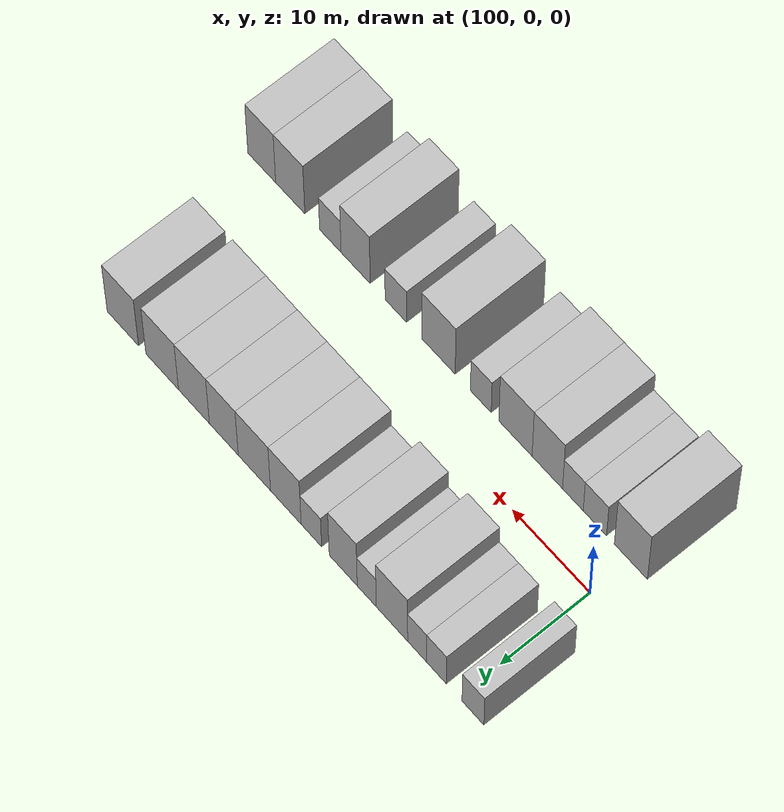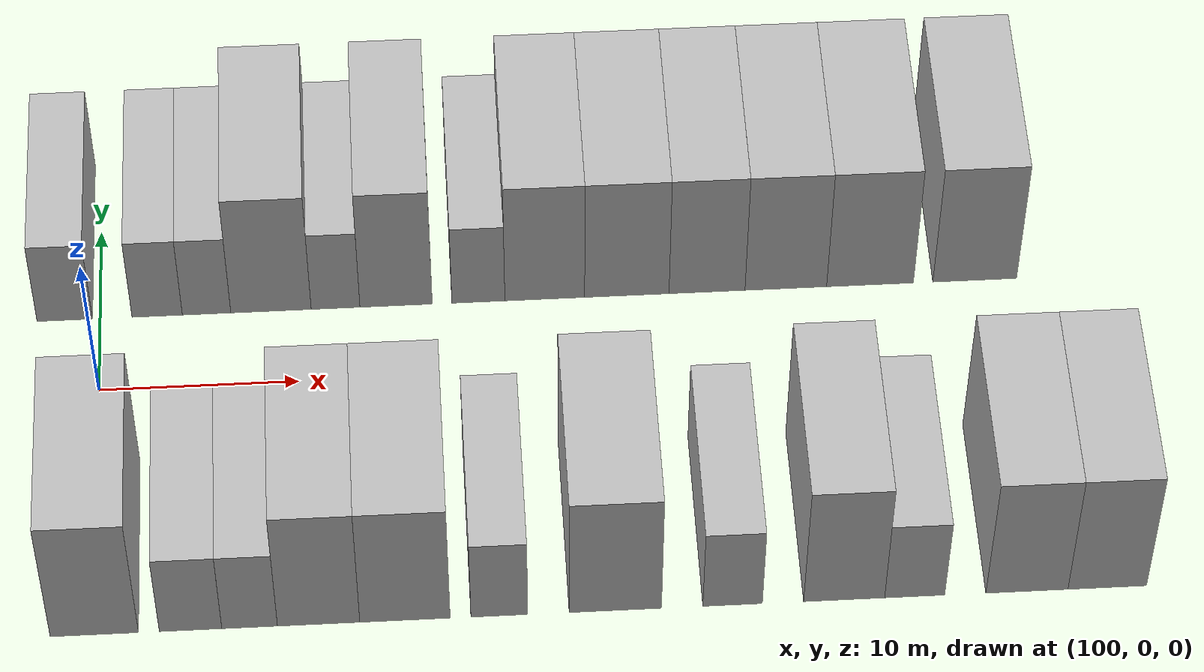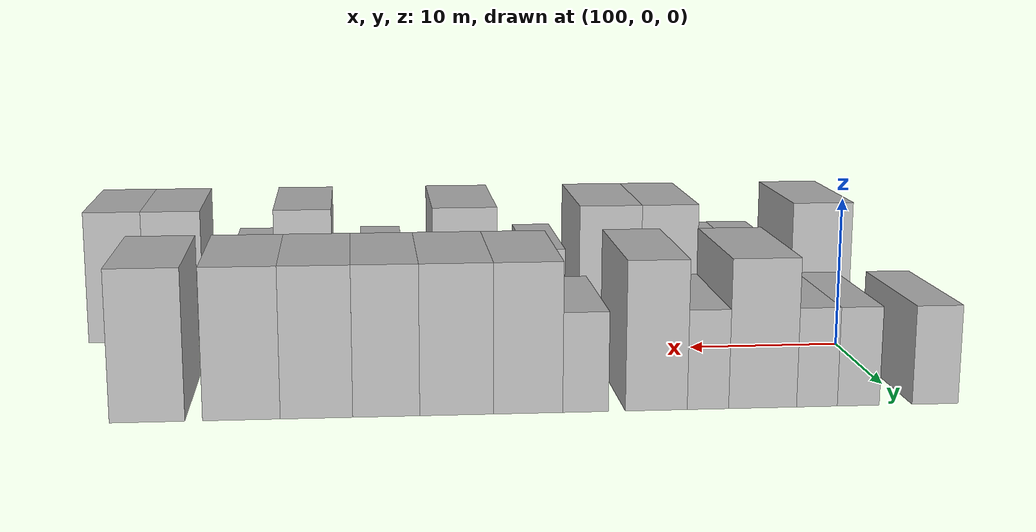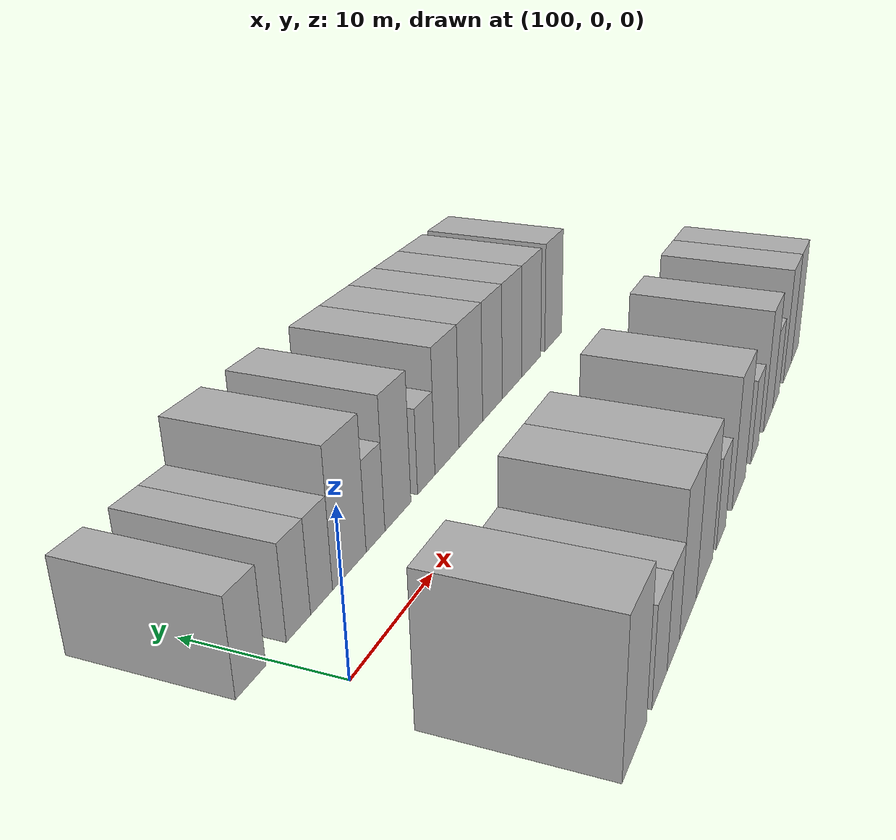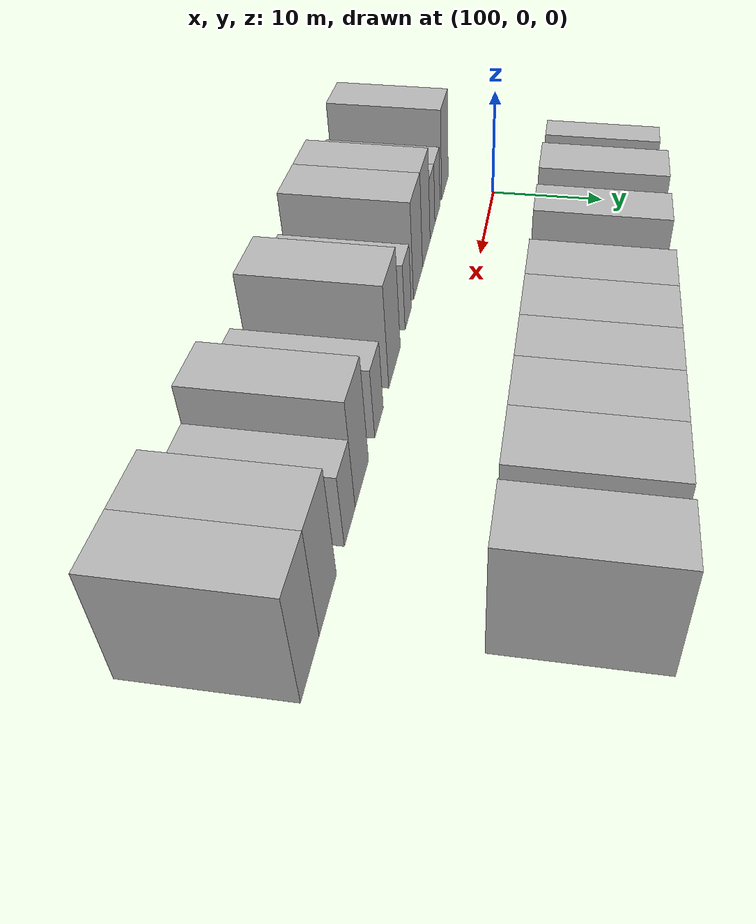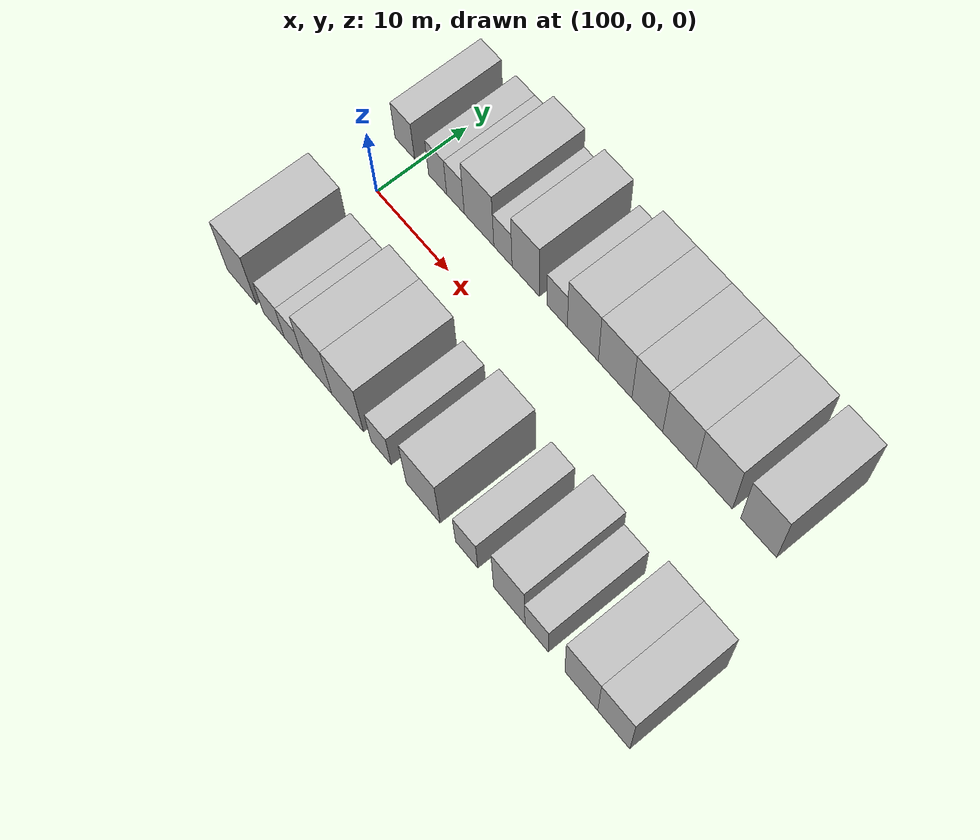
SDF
<sdf version="1.6">
 <world name="default">
  <model name="building_27">
   <static>1</static>
   <pose>98.1973 9.5000 0 0.000000 0.000000 1.570796</pose>
   <link name="link">
    <pose>0 0 3.00 0 0 0</pose>
    <collision name="collision"><geometry><box><size>10.0000 2.8018 6.0000</size></box></geometry></collision>
    <visual name="visual">
     <cast_shadows>0</cast_shadows>
     <geometry><box><size>10.0000 2.8018 6.0000</size></box></geometry>
     <material>
      <script>
       <uri>model://HANNAS_wall/materials/scripts</uri>
       <uri>model://HANNAS_wall/materials/textures</uri>
       <name>vrc/HANNAS_wall</name>
      </script>
     </material>
    </visual>
   </link>
  </model>
  <model name="building_28">
   <static>1</static>
   <pose>102.8704 9.5000 0 0.000000 0.000000 1.570796</pose>
   <link name="link">
    <pose>0 0 3.00 0 0 0</pose>
    <collision name="collision"><geometry><box><size>10.0000 2.5444 6.0000</size></box></geometry></collision>
    <visual name="visual">
     <cast_shadows>0</cast_shadows>
     <geometry><box><size>10.0000 2.5444 6.0000</size></box></geometry>
     <material>
      <script>
       <uri>model://HANNAS_wall/materials/scripts</uri>
       <uri>model://HANNAS_wall/materials/textures</uri>
       <name>vrc/HANNAS_wall</name>
      </script>
     </material>
    </visual>
   </link>
  </model>
  <model name="building_29">
   <static>1</static>
   <pose>105.3712 9.5000 0 0.000000 0.000000 1.570796</pose>
   <link name="link">
    <pose>0 0 3.00 0 0 0</pose>
    <collision name="collision"><geometry><box><size>10.0000 2.4571 6.0000</size></box></geometry></collision>
    <visual name="visual">
     <cast_shadows>0</cast_shadows>
     <geometry><box><size>10.0000 2.4571 6.0000</size></box></geometry>
     <material>
      <script>
       <uri>model://HANNAS_wall/materials/scripts</uri>
       <uri>model://HANNAS_wall/materials/textures</uri>
       <name>vrc/HANNAS_wall</name>
      </script>
     </material>
    </visual>
   </link>
  </model>
  <model name="building_30">
   <static>1</static>
   <pose>108.6389 9.5000 0 0.000000 0.000000 1.570796</pose>
   <link name="link">
    <pose>0 0 4.50 0 0 0</pose>
    <collision name="collision"><geometry><box><size>10.0000 4.0783 9.0000</size></box></geometry></collision>
    <visual name="visual">
     <cast_shadows>0</cast_shadows>
     <geometry><box><size>10.0000 4.0783 9.0000</size></box></geometry>
     <material>
      <script>
       <uri>model://HANNAS_wall/materials/scripts</uri>
       <uri>model://HANNAS_wall/materials/textures</uri>
       <name>vrc/HANNAS_wall</name>
      </script>
     </material>
    </visual>
   </link>
  </model>
  <model name="building_31">
   <static>1</static>
   <pose>111.9144 9.5000 0 0.000000 0.000000 1.570796</pose>
   <link name="link">
    <pose>0 0 3.00 0 0 0</pose>
    <collision name="collision"><geometry><box><size>10.0000 2.4729 6.0000</size></box></geometry></collision>
    <visual name="visual">
     <cast_shadows>0</cast_shadows>
     <geometry><box><size>10.0000 2.4729 6.0000</size></box></geometry>
     <material>
      <script>
       <uri>model://HANNAS_wall/materials/scripts</uri>
       <uri>model://HANNAS_wall/materials/textures</uri>
       <name>vrc/HANNAS_wall</name>
      </script>
     </material>
    </visual>
   </link>
  </model>
  <model name="building_32">
   <static>1</static>
   <pose>114.9888 9.5000 0 0.000000 0.000000 1.570796</pose>
   <link name="link">
    <pose>0 0 4.50 0 0 0</pose>
    <collision name="collision"><geometry><box><size>10.0000 3.6758 9.0000</size></box></geometry></collision>
    <visual name="visual">
     <cast_shadows>0</cast_shadows>
     <geometry><box><size>10.0000 3.6758 9.0000</size></box></geometry>
     <material>
      <script>
       <uri>model://HANNAS_wall/materials/scripts</uri>
       <uri>model://HANNAS_wall/materials/textures</uri>
       <name>vrc/HANNAS_wall</name>
      </script>
     </material>
    </visual>
   </link>
  </model>
  <model name="building_33">
   <static>1</static>
   <pose>119.1749 9.5000 0 0.000000 0.000000 1.570796</pose>
   <link name="link">
    <pose>0 0 3.00 0 0 0</pose>
    <collision name="collision"><geometry><box><size>10.0000 2.6965 6.0000</size></box></geometry></collision>
    <visual name="visual">
     <cast_shadows>0</cast_shadows>
     <geometry><box><size>10.0000 2.6965 6.0000</size></box></geometry>
     <material>
      <script>
       <uri>model://HANNAS_wall/materials/scripts</uri>
       <uri>model://HANNAS_wall/materials/textures</uri>
       <name>vrc/HANNAS_wall</name>
      </script>
     </material>
    </visual>
   </link>
  </model>
  <model name="building_34">
   <static>1</static>
   <pose>122.5551 9.5000 0 0.000000 0.000000 1.570796</pose>
   <link name="link">
    <pose>0 0 4.50 0 0 0</pose>
    <collision name="collision"><geometry><box><size>10.0000 4.0638 9.0000</size></box></geometry></collision>
    <visual name="visual">
     <cast_shadows>0</cast_shadows>
     <geometry><box><size>10.0000 4.0638 9.0000</size></box></geometry>
     <material>
      <script>
       <uri>model://HANNAS_wall/materials/scripts</uri>
       <uri>model://HANNAS_wall/materials/textures</uri>
       <name>vrc/HANNAS_wall</name>
      </script>
     </material>
    </visual>
   </link>
  </model>
  <model name="building_35">
   <static>1</static>
   <pose>126.7387 9.5000 0 0.000000 0.000000 1.570796</pose>
   <link name="link">
    <pose>0 0 4.50 0 0 0</pose>
    <collision name="collision"><geometry><box><size>10.0000 4.3034 9.0000</size></box></geometry></collision>
    <visual name="visual">
     <cast_shadows>0</cast_shadows>
     <geometry><box><size>10.0000 4.3034 9.0000</size></box></geometry>
     <material>
      <script>
       <uri>model://HANNAS_wall/materials/scripts</uri>
       <uri>model://HANNAS_wall/materials/textures</uri>
       <name>vrc/HANNAS_wall</name>
      </script>
     </material>
    </visual>
   </link>
  </model>
  <model name="building_36">
   <static>1</static>
   <pose>130.8312 9.5000 0 0.000000 0.000000 1.570796</pose>
   <link name="link">
    <pose>0 0 4.50 0 0 0</pose>
    <collision name="collision"><geometry><box><size>10.0000 3.8817 9.0000</size></box></geometry></collision>
    <visual name="visual">
     <cast_shadows>0</cast_shadows>
     <geometry><box><size>10.0000 3.8817 9.0000</size></box></geometry>
     <material>
      <script>
       <uri>model://HANNAS_wall/materials/scripts</uri>
       <uri>model://HANNAS_wall/materials/textures</uri>
       <name>vrc/HANNAS_wall</name>
      </script>
     </material>
    </visual>
   </link>
  </model>
  <model name="building_37">
   <static>1</static>
   <pose>134.8598 9.5000 0 0.000000 0.000000 1.570796</pose>
   <link name="link">
    <pose>0 0 4.50 0 0 0</pose>
    <collision name="collision"><geometry><box><size>10.0000 4.1754 9.0000</size></box></geometry></collision>
    <visual name="visual">
     <cast_shadows>0</cast_shadows>
     <geometry><box><size>10.0000 4.1754 9.0000</size></box></geometry>
     <material>
      <script>
       <uri>model://HANNAS_wall/materials/scripts</uri>
       <uri>model://HANNAS_wall/materials/textures</uri>
       <name>vrc/HANNAS_wall</name>
      </script>
     </material>
    </visual>
   </link>
  </model>
  <model name="building_38">
   <static>1</static>
   <pose>139.1680 9.5000 0 0.000000 0.000000 1.570796</pose>
   <link name="link">
    <pose>0 0 4.50 0 0 0</pose>
    <collision name="collision"><geometry><box><size>10.0000 4.4410 9.0000</size></box></geometry></collision>
    <visual name="visual">
     <cast_shadows>0</cast_shadows>
     <geometry><box><size>10.0000 4.4410 9.0000</size></box></geometry>
     <material>
      <script>
       <uri>model://HANNAS_wall/materials/scripts</uri>
       <uri>model://HANNAS_wall/materials/textures</uri>
       <name>vrc/HANNAS_wall</name>
      </script>
     </material>
    </visual>
   </link>
  </model>
  <model name="building_39">
   <static>1</static>
   <pose>144.5347 9.5000 0 0.000000 0.000000 1.570796</pose>
   <link name="link">
    <pose>0 0 4.50 0 0 0</pose>
    <collision name="collision"><geometry><box><size>10.0000 4.2924 9.0000</size></box></geometry></collision>
    <visual name="visual">
     <cast_shadows>0</cast_shadows>
     <geometry><box><size>10.0000 4.2924 9.0000</size></box></geometry>
     <material>
      <script>
       <uri>model://HANNAS_wall/materials/scripts</uri>
       <uri>model://HANNAS_wall/materials/textures</uri>
       <name>vrc/HANNAS_wall</name>
      </script>
     </material>
    </visual>
   </link>
  </model>
  <model name="building_78">
   <static>1</static>
   <pose>99.9613 -9.5000 0 0.000000 0.000000 1.570796</pose>
   <link name="link">
    <pose>0 0 4.50 0 0 0</pose>
    <collision name="collision"><geometry><box><size>10.0000 4.2219 9.0000</size></box></geometry></collision>
    <visual name="visual">
     <cast_shadows>0</cast_shadows>
     <geometry><box><size>10.0000 4.2219 9.0000</size></box></geometry>
     <material>
      <script>
       <uri>model://HANNAS_wall/materials/scripts</uri>
       <uri>model://HANNAS_wall/materials/textures</uri>
       <name>vrc/HANNAS_wall</name>
      </script>
     </material>
    </visual>
   </link>
  </model>
  <model name="building_79">
   <static>1</static>
   <pose>104.5692 -9.5000 0 0.000000 0.000000 1.570796</pose>
   <link name="link">
    <pose>0 0 3.00 0 0 0</pose>
    <collision name="collision"><geometry><box><size>10.0000 2.9939 6.0000</size></box></geometry></collision>
    <visual name="visual">
     <cast_shadows>0</cast_shadows>
     <geometry><box><size>10.0000 2.9939 6.0000</size></box></geometry>
     <material>
      <script>
       <uri>model://HANNAS_wall/materials/scripts</uri>
       <uri>model://HANNAS_wall/materials/textures</uri>
       <name>vrc/HANNAS_wall</name>
      </script>
     </material>
    </visual>
   </link>
  </model>
  <model name="building_80">
   <static>1</static>
   <pose>107.3994 -9.5000 0 0.000000 0.000000 1.570796</pose>
   <link name="link">
    <pose>0 0 3.00 0 0 0</pose>
    <collision name="collision"><geometry><box><size>10.0000 2.6664 6.0000</size></box></geometry></collision>
    <visual name="visual">
     <cast_shadows>0</cast_shadows>
     <geometry><box><size>10.0000 2.6664 6.0000</size></box></geometry>
     <material>
      <script>
       <uri>model://HANNAS_wall/materials/scripts</uri>
       <uri>model://HANNAS_wall/materials/textures</uri>
       <name>vrc/HANNAS_wall</name>
      </script>
     </material>
    </visual>
   </link>
  </model>
  <model name="building_81">
   <static>1</static>
   <pose>110.7087 -9.5000 0 0.000000 0.000000 1.570796</pose>
   <link name="link">
    <pose>0 0 4.50 0 0 0</pose>
    <collision name="collision"><geometry><box><size>10.0000 3.9523 9.0000</size></box></geometry></collision>
    <visual name="visual">
     <cast_shadows>0</cast_shadows>
     <geometry><box><size>10.0000 3.9523 9.0000</size></box></geometry>
     <material>
      <script>
       <uri>model://HANNAS_wall/materials/scripts</uri>
       <uri>model://HANNAS_wall/materials/textures</uri>
       <name>vrc/HANNAS_wall</name>
      </script>
     </material>
    </visual>
   </link>
  </model>
  <model name="building_82">
   <static>1</static>
   <pose>114.8561 -9.5000 0 0.000000 0.000000 1.570796</pose>
   <link name="link">
    <pose>0 0 4.50 0 0 0</pose>
    <collision name="collision"><geometry><box><size>10.0000 4.3426 9.0000</size></box></geometry></collision>
    <visual name="visual">
     <cast_shadows>0</cast_shadows>
     <geometry><box><size>10.0000 4.3426 9.0000</size></box></geometry>
     <material>
      <script>
       <uri>model://HANNAS_wall/materials/scripts</uri>
       <uri>model://HANNAS_wall/materials/textures</uri>
       <name>vrc/HANNAS_wall</name>
      </script>
     </material>
    </visual>
   </link>
  </model>
  <model name="building_83">
   <static>1</static>
   <pose>119.3944 -9.5000 0 0.000000 0.000000 1.570796</pose>
   <link name="link">
    <pose>0 0 3.00 0 0 0</pose>
    <collision name="collision"><geometry><box><size>10.0000 2.7340 6.0000</size></box></geometry></collision>
    <visual name="visual">
     <cast_shadows>0</cast_shadows>
     <geometry><box><size>10.0000 2.7340 6.0000</size></box></geometry>
     <material>
      <script>
       <uri>model://HANNAS_wall/materials/scripts</uri>
       <uri>model://HANNAS_wall/materials/textures</uri>
       <name>vrc/HANNAS_wall</name>
      </script>
     </material>
    </visual>
   </link>
  </model>
  <model name="building_84">
   <static>1</static>
   <pose>124.9849 -9.5000 0 0.000000 0.000000 1.570796</pose>
   <link name="link">
    <pose>0 0 4.50 0 0 0</pose>
    <collision name="collision"><geometry><box><size>10.0000 4.4470 9.0000</size></box></geometry></collision>
    <visual name="visual">
     <cast_shadows>0</cast_shadows>
     <geometry><box><size>10.0000 4.4470 9.0000</size></box></geometry>
     <material>
      <script>
       <uri>model://HANNAS_wall/materials/scripts</uri>
       <uri>model://HANNAS_wall/materials/textures</uri>
       <name>vrc/HANNAS_wall</name>
      </script>
     </material>
    </visual>
   </link>
  </model>
  <model name="building_85">
   <static>1</static>
   <pose>130.6439 -9.5000 0 0.000000 0.000000 1.570796</pose>
   <link name="link">
    <pose>0 0 3.00 0 0 0</pose>
    <collision name="collision"><geometry><box><size>10.0000 2.8711 6.0000</size></box></geometry></collision>
    <visual name="visual">
     <cast_shadows>0</cast_shadows>
     <geometry><box><size>10.0000 2.8711 6.0000</size></box></geometry>
     <material>
      <script>
       <uri>model://HANNAS_wall/materials/scripts</uri>
       <uri>model://HANNAS_wall/materials/textures</uri>
       <name>vrc/HANNAS_wall</name>
      </script>
     </material>
    </visual>
   </link>
  </model>
  <model name="building_86">
   <static>1</static>
   <pose>136.0400 -9.5000 0 0.000000 0.000000 1.570796</pose>
   <link name="link">
    <pose>0 0 4.50 0 0 0</pose>
    <collision name="collision"><geometry><box><size>10.0000 3.9212 9.0000</size></box></geometry></collision>
    <visual name="visual">
     <cast_shadows>0</cast_shadows>
     <geometry><box><size>10.0000 3.9212 9.0000</size></box></geometry>
     <material>
      <script>
       <uri>model://HANNAS_wall/materials/scripts</uri>
       <uri>model://HANNAS_wall/materials/textures</uri>
       <name>vrc/HANNAS_wall</name>
      </script>
     </material>
    </visual>
   </link>
  </model>
  <model name="building_87">
   <static>1</static>
   <pose>139.4544 -9.5000 0 0.000000 0.000000 1.570796</pose>
   <link name="link">
    <pose>0 0 3.00 0 0 0</pose>
    <collision name="collision"><geometry><box><size>10.0000 2.9076 6.0000</size></box></geometry></collision>
    <visual name="visual">
     <cast_shadows>0</cast_shadows>
     <geometry><box><size>10.0000 2.9076 6.0000</size></box></geometry>
     <material>
      <script>
       <uri>model://HANNAS_wall/materials/scripts</uri>
       <uri>model://HANNAS_wall/materials/textures</uri>
       <name>vrc/HANNAS_wall</name>
      </script>
     </material>
    </visual>
   </link>
  </model>
  <model name="building_88">
   <static>1</static>
   <pose>144.9012 -9.5000 0 0.000000 0.000000 1.570796</pose>
   <link name="link">
    <pose>0 0 4.50 0 0 0</pose>
    <collision name="collision"><geometry><box><size>10.0000 3.9860 9.0000</size></box></geometry></collision>
    <visual name="visual">
     <cast_shadows>0</cast_shadows>
     <geometry><box><size>10.0000 3.9860 9.0000</size></box></geometry>
     <material>
      <script>
       <uri>model://HANNAS_wall/materials/scripts</uri>
       <uri>model://HANNAS_wall/materials/textures</uri>
       <name>vrc/HANNAS_wall</name>
      </script>
     </material>
    </visual>
   </link>
  </model>
  <model name="building_89">
   <static>1</static>
   <pose>148.8022 -9.5000 0 0.000000 0.000000 1.570796</pose>
   <link name="link">
    <pose>0 0 4.50 0 0 0</pose>
    <collision name="collision"><geometry><box><size>10.0000 3.8161 9.0000</size></box></geometry></collision>
    <visual name="visual">
     <cast_shadows>0</cast_shadows>
     <geometry><box><size>10.0000 3.8161 9.0000</size></box></geometry>
     <material>
      <script>
       <uri>model://HANNAS_wall/materials/scripts</uri>
       <uri>model://HANNAS_wall/materials/textures</uri>
       <name>vrc/HANNAS_wall</name>
      </script>
     </material>
    </visual>
   </link>
  </model>
 </world>
</sdf>
